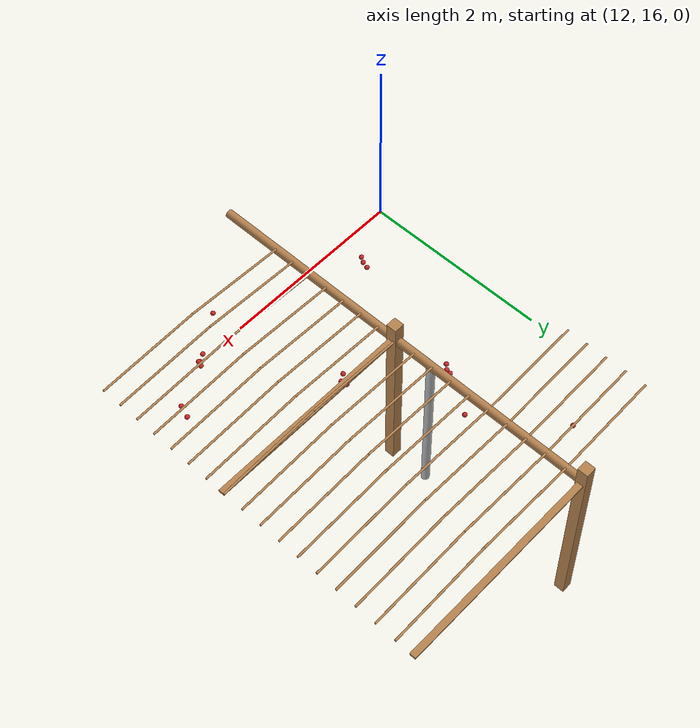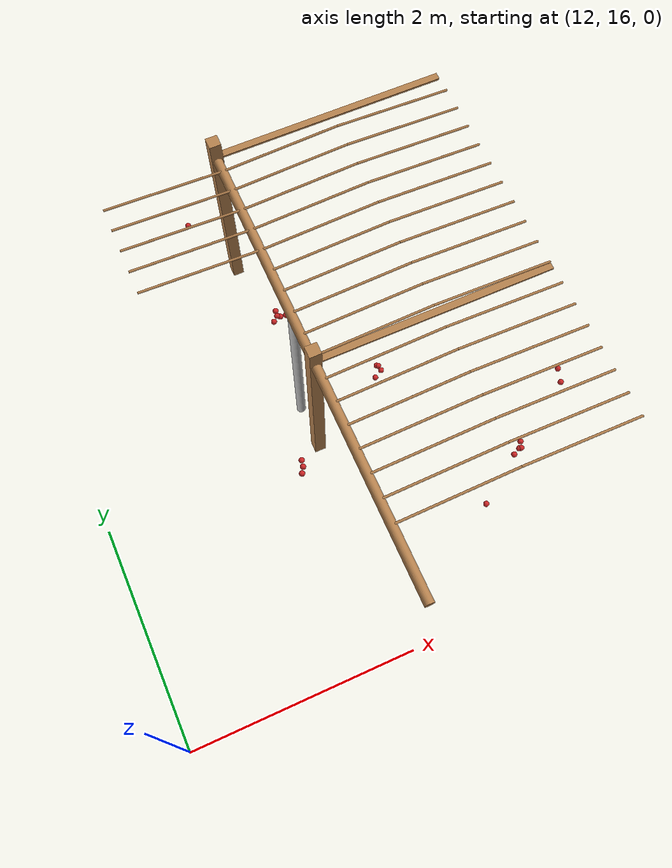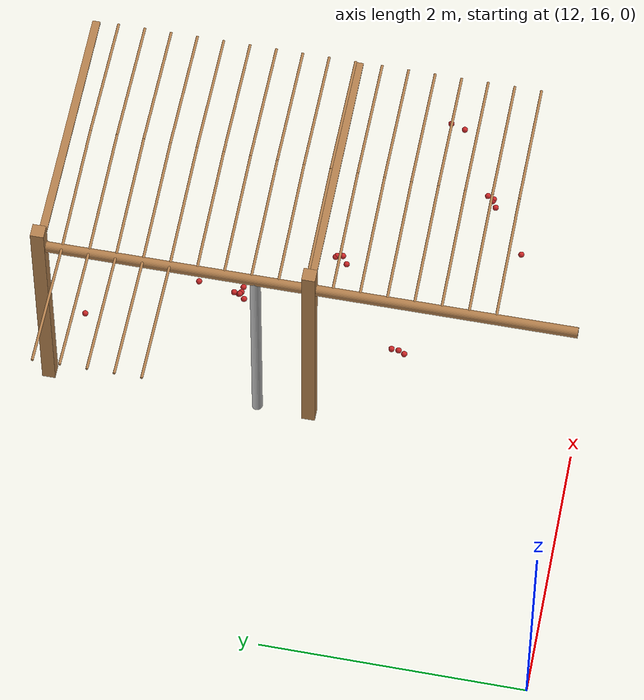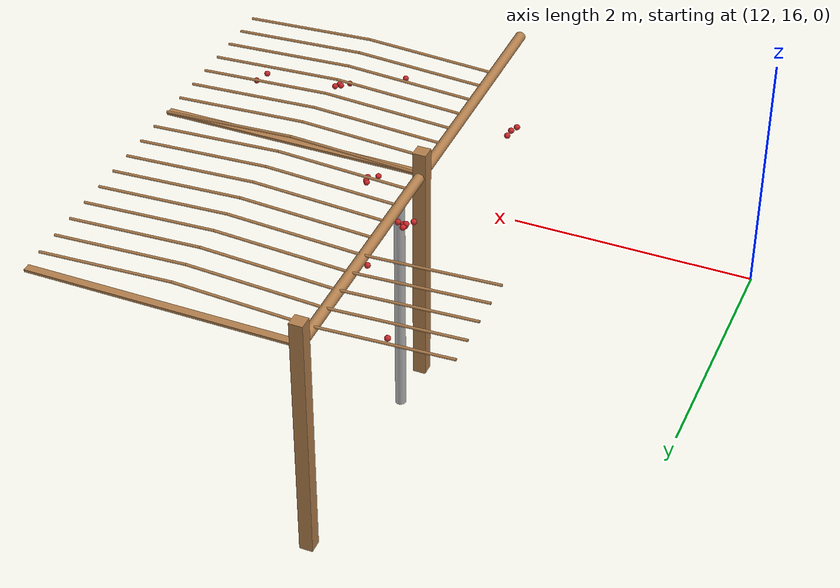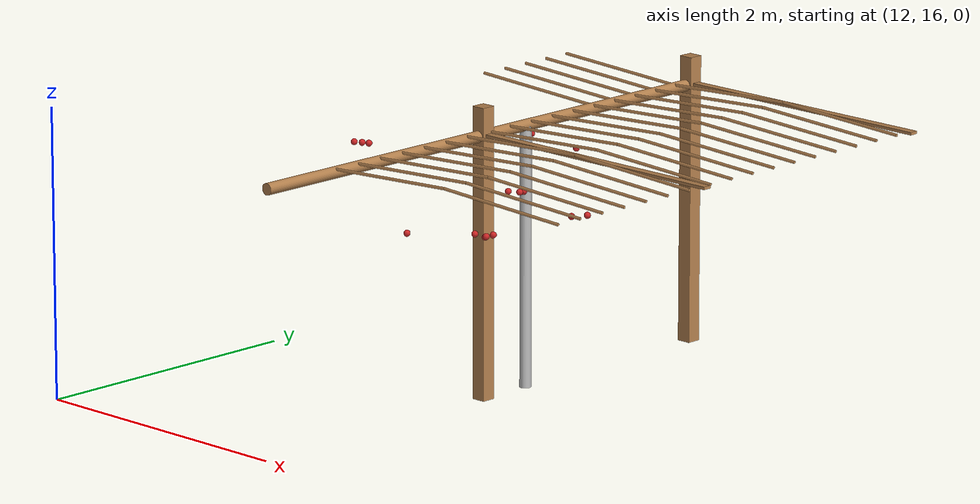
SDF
<sdf version="1.4">
 <model name="pergola">
  <include><name>post_86</name><pose>14.0 18.0 0 0 0 0</pose><uri>model://post</uri></include>
  <include><name>post_87</name><pose>14.0 20.0 0 0 0 0</pose><uri>model://post</uri></include>
  <link name="beam_86">
   <pose>15.0 18.0 1.81 0 0 0</pose>
   <collision name="collision"><geometry><box><size>2.0 0.06 0.02</size></box></geometry></collision>
   <visual name="visual">
    <geometry><box><size>2.0 0.06 0.02</size></box></geometry>
    <material><script><name>Gazebo/Wood</name></script></material>
   </visual>
   <inertial>
    <mass>5</mass>
    <inertia>
     <ixx>0.0016666666666666668</ixx>
     <ixy>0.0</ixy>
     <ixz>0.0</ixz>
     <iyy>1.6681666666666664</iyy>
     <iyz>0.0</iyz>
     <izz>1.6668333333333332</izz>
    </inertia>
   </inertial>
  </link>
  <link name="beam_87">
   <pose>15.0 20.0 1.81 0 0 0</pose>
   <collision name="collision"><geometry><box><size>2.0 0.06 0.02</size></box></geometry></collision>
   <visual name="visual">
    <geometry><box><size>2.0 0.06 0.02</size></box></geometry>
    <material><script><name>Gazebo/Wood</name></script></material>
   </visual>
   <inertial>
    <mass>5</mass>
    <inertia>
     <ixx>0.0016666666666666668</ixx>
     <ixy>0.0</ixy>
     <ixz>0.0</ixz>
     <iyy>1.6681666666666664</iyy>
     <iyz>0.0</iyz>
     <izz>1.6668333333333332</izz>
    </inertia>
   </inertial>
  </link>
  <include><name>tree_79</name><pose>14.0 18.4 0 0 0 0</pose><uri>model://tree_trunk</uri></include>
  <link name="baseBranch_78">
   <pose>14.0 17.0 1.8 1.5707963267948966 0 0</pose>
   <collision name="collision">
    <geometry><cylinder><radius>0.04</radius><length>1.94</length></cylinder></geometry>
   </collision>
   <visual name="visual">
    <geometry><cylinder><radius>0.04</radius><length>1.94</length></cylinder></geometry>
    <material><script><name>Gazebo/WoodFloor</name></script></material>
   </visual>
   <inertial>
    <mass>10</mass>
    <inertia>
     <ixx>3.140333333333333</ixx>
     <ixy>0.0</ixy>
     <ixz>0.0</ixz>
     <iyy>3.140333333333333</iyy>
     <iyz>0.0</iyz>
     <izz>0.008</izz>
    </inertia>
   </inertial>
  </link>
  <link name="baseBranch_79">
   <pose>14.0 19.0 1.8 1.5707963267948966 0 0</pose>
   <collision name="collision">
    <geometry><cylinder><radius>0.04</radius><length>1.94</length></cylinder></geometry>
   </collision>
   <visual name="visual">
    <geometry><cylinder><radius>0.04</radius><length>1.94</length></cylinder></geometry>
    <material><script><name>Gazebo/WoodFloor</name></script></material>
   </visual>
   <inertial>
    <mass>10</mass>
    <inertia>
     <ixx>3.140333333333333</ixx>
     <ixy>0.0</ixy>
     <ixz>0.0</ixz>
     <iyy>3.140333333333333</iyy>
     <iyz>0.0</iyz>
     <izz>0.008</izz>
    </inertia>
   </inertial>
  </link>
  <link name="vine_1391">
   <pose>13.5 19.03 1.85 0 -1.5208379310729538 0</pose>
   <collision name="collision">
    <geometry><cylinder><radius>0.01</radius><length>1.0012492197250393</length></cylinder></geometry>
   </collision>
   <visual name="visual">
    <geometry><cylinder><radius>0.01</radius><length>1.0012492197250393</length></cylinder></geometry>
    <material><script><name>Gazebo/WoodFloor</name></script></material>
   </visual>
   <inertial>
    <mass>5</mass>
    <inertia>
     <ixx>0.41783333333333345</ixx>
     <ixy>0.0</ixy>
     <ixz>0.0</ixz>
     <iyy>0.41783333333333345</iyy>
     <iyz>0.0</iyz>
     <izz>0.00025</izz>
    </inertia>
   </inertial>
  </link>
  <link name="vine_1393">
   <pose>13.5 19.230000000000004 1.85 0 -1.5208379310729538 0</pose>
   <collision name="collision">
    <geometry><cylinder><radius>0.01</radius><length>1.0012492197250393</length></cylinder></geometry>
   </collision>
   <visual name="visual">
    <geometry><cylinder><radius>0.01</radius><length>1.0012492197250393</length></cylinder></geometry>
    <material><script><name>Gazebo/WoodFloor</name></script></material>
   </visual>
   <inertial>
    <mass>5</mass>
    <inertia>
     <ixx>0.41783333333333345</ixx>
     <ixy>0.0</ixy>
     <ixz>0.0</ixz>
     <iyy>0.41783333333333345</iyy>
     <iyz>0.0</iyz>
     <izz>0.00025</izz>
    </inertia>
   </inertial>
  </link>
  <link name="vine_1395">
   <pose>13.5 19.430000000000003 1.85 0 -1.5208379310729538 0</pose>
   <collision name="collision">
    <geometry><cylinder><radius>0.01</radius><length>1.0012492197250393</length></cylinder></geometry>
   </collision>
   <visual name="visual">
    <geometry><cylinder><radius>0.01</radius><length>1.0012492197250393</length></cylinder></geometry>
    <material><script><name>Gazebo/WoodFloor</name></script></material>
   </visual>
   <inertial>
    <mass>5</mass>
    <inertia>
     <ixx>0.41783333333333345</ixx>
     <ixy>0.0</ixy>
     <ixz>0.0</ixz>
     <iyy>0.41783333333333345</iyy>
     <iyz>0.0</iyz>
     <izz>0.00025</izz>
    </inertia>
   </inertial>
  </link>
  <link name="vine_1397">
   <pose>13.5 19.630000000000003 1.85 0 -1.5208379310729538 0</pose>
   <collision name="collision">
    <geometry><cylinder><radius>0.01</radius><length>1.0012492197250393</length></cylinder></geometry>
   </collision>
   <visual name="visual">
    <geometry><cylinder><radius>0.01</radius><length>1.0012492197250393</length></cylinder></geometry>
    <material><script><name>Gazebo/WoodFloor</name></script></material>
   </visual>
   <inertial>
    <mass>5</mass>
    <inertia>
     <ixx>0.41783333333333345</ixx>
     <ixy>0.0</ixy>
     <ixz>0.0</ixz>
     <iyy>0.41783333333333345</iyy>
     <iyz>0.0</iyz>
     <izz>0.00025</izz>
    </inertia>
   </inertial>
  </link>
  <link name="vine_1399">
   <pose>13.5 19.830000000000002 1.85 0 -1.5208379310729538 0</pose>
   <collision name="collision">
    <geometry><cylinder><radius>0.01</radius><length>1.0012492197250393</length></cylinder></geometry>
   </collision>
   <visual name="visual">
    <geometry><cylinder><radius>0.01</radius><length>1.0012492197250393</length></cylinder></geometry>
    <material><script><name>Gazebo/WoodFloor</name></script></material>
   </visual>
   <inertial>
    <mass>5</mass>
    <inertia>
     <ixx>0.41783333333333345</ixx>
     <ixy>0.0</ixy>
     <ixz>0.0</ixz>
     <iyy>0.41783333333333345</iyy>
     <iyz>0.0</iyz>
     <izz>0.00025</izz>
    </inertia>
   </inertial>
  </link>
  <link name="vine_1566">
   <pose>14.5 16.630000000000003 1.85 0 1.5208379310729538 0</pose>
   <collision name="collision">
    <geometry><cylinder><radius>0.01</radius><length>1.0012492197250393</length></cylinder></geometry>
   </collision>
   <visual name="visual">
    <geometry><cylinder><radius>0.01</radius><length>1.0012492197250393</length></cylinder></geometry>
    <material><script><name>Gazebo/WoodFloor</name></script></material>
   </visual>
   <inertial>
    <mass>5</mass>
    <inertia>
     <ixx>0.41783333333333345</ixx>
     <ixy>0.0</ixy>
     <ixz>0.0</ixz>
     <iyy>0.41783333333333345</iyy>
     <iyz>0.0</iyz>
     <izz>0.00025</izz>
    </inertia>
   </inertial>
  </link>
  <link name="vine_1567">
   <pose>15.5 16.630000000000003 1.85 0 -1.5208379310729538 0</pose>
   <collision name="collision">
    <geometry><cylinder><radius>0.01</radius><length>1.0012492197250393</length></cylinder></geometry>
   </collision>
   <visual name="visual">
    <geometry><cylinder><radius>0.01</radius><length>1.0012492197250393</length></cylinder></geometry>
    <material><script><name>Gazebo/WoodFloor</name></script></material>
   </visual>
   <inertial>
    <mass>5</mass>
    <inertia>
     <ixx>0.41783333333333345</ixx>
     <ixy>0.0</ixy>
     <ixz>0.0</ixz>
     <iyy>0.41783333333333345</iyy>
     <iyz>0.0</iyz>
     <izz>0.00025</izz>
    </inertia>
   </inertial>
  </link>
  <link name="vine_1568">
   <pose>14.5 16.830000000000002 1.85 0 1.5208379310729538 0</pose>
   <collision name="collision">
    <geometry><cylinder><radius>0.01</radius><length>1.0012492197250393</length></cylinder></geometry>
   </collision>
   <visual name="visual">
    <geometry><cylinder><radius>0.01</radius><length>1.0012492197250393</length></cylinder></geometry>
    <material><script><name>Gazebo/WoodFloor</name></script></material>
   </visual>
   <inertial>
    <mass>5</mass>
    <inertia>
     <ixx>0.41783333333333345</ixx>
     <ixy>0.0</ixy>
     <ixz>0.0</ixz>
     <iyy>0.41783333333333345</iyy>
     <iyz>0.0</iyz>
     <izz>0.00025</izz>
    </inertia>
   </inertial>
  </link>
  <link name="vine_1569">
   <pose>15.5 16.830000000000002 1.85 0 -1.5208379310729538 0</pose>
   <collision name="collision">
    <geometry><cylinder><radius>0.01</radius><length>1.0012492197250393</length></cylinder></geometry>
   </collision>
   <visual name="visual">
    <geometry><cylinder><radius>0.01</radius><length>1.0012492197250393</length></cylinder></geometry>
    <material><script><name>Gazebo/WoodFloor</name></script></material>
   </visual>
   <inertial>
    <mass>5</mass>
    <inertia>
     <ixx>0.41783333333333345</ixx>
     <ixy>0.0</ixy>
     <ixz>0.0</ixz>
     <iyy>0.41783333333333345</iyy>
     <iyz>0.0</iyz>
     <izz>0.00025</izz>
    </inertia>
   </inertial>
  </link>
  <link name="vine_1570">
   <pose>14.5 17.03 1.85 0 1.5208379310729538 0</pose>
   <collision name="collision">
    <geometry><cylinder><radius>0.01</radius><length>1.0012492197250393</length></cylinder></geometry>
   </collision>
   <visual name="visual">
    <geometry><cylinder><radius>0.01</radius><length>1.0012492197250393</length></cylinder></geometry>
    <material><script><name>Gazebo/WoodFloor</name></script></material>
   </visual>
   <inertial>
    <mass>5</mass>
    <inertia>
     <ixx>0.41783333333333345</ixx>
     <ixy>0.0</ixy>
     <ixz>0.0</ixz>
     <iyy>0.41783333333333345</iyy>
     <iyz>0.0</iyz>
     <izz>0.00025</izz>
    </inertia>
   </inertial>
  </link>
  <link name="vine_1571">
   <pose>15.5 17.03 1.85 0 -1.5208379310729538 0</pose>
   <collision name="collision">
    <geometry><cylinder><radius>0.01</radius><length>1.0012492197250393</length></cylinder></geometry>
   </collision>
   <visual name="visual">
    <geometry><cylinder><radius>0.01</radius><length>1.0012492197250393</length></cylinder></geometry>
    <material><script><name>Gazebo/WoodFloor</name></script></material>
   </visual>
   <inertial>
    <mass>5</mass>
    <inertia>
     <ixx>0.41783333333333345</ixx>
     <ixy>0.0</ixy>
     <ixz>0.0</ixz>
     <iyy>0.41783333333333345</iyy>
     <iyz>0.0</iyz>
     <izz>0.00025</izz>
    </inertia>
   </inertial>
  </link>
  <link name="vine_1572">
   <pose>14.5 17.23 1.85 0 1.5208379310729538 0</pose>
   <collision name="collision">
    <geometry><cylinder><radius>0.01</radius><length>1.0012492197250393</length></cylinder></geometry>
   </collision>
   <visual name="visual">
    <geometry><cylinder><radius>0.01</radius><length>1.0012492197250393</length></cylinder></geometry>
    <material><script><name>Gazebo/WoodFloor</name></script></material>
   </visual>
   <inertial>
    <mass>5</mass>
    <inertia>
     <ixx>0.41783333333333345</ixx>
     <ixy>0.0</ixy>
     <ixz>0.0</ixz>
     <iyy>0.41783333333333345</iyy>
     <iyz>0.0</iyz>
     <izz>0.00025</izz>
    </inertia>
   </inertial>
  </link>
  <link name="vine_1573">
   <pose>15.5 17.23 1.85 0 -1.5208379310729538 0</pose>
   <collision name="collision">
    <geometry><cylinder><radius>0.01</radius><length>1.0012492197250393</length></cylinder></geometry>
   </collision>
   <visual name="visual">
    <geometry><cylinder><radius>0.01</radius><length>1.0012492197250393</length></cylinder></geometry>
    <material><script><name>Gazebo/WoodFloor</name></script></material>
   </visual>
   <inertial>
    <mass>5</mass>
    <inertia>
     <ixx>0.41783333333333345</ixx>
     <ixy>0.0</ixy>
     <ixz>0.0</ixz>
     <iyy>0.41783333333333345</iyy>
     <iyz>0.0</iyz>
     <izz>0.00025</izz>
    </inertia>
   </inertial>
  </link>
  <link name="vine_1574">
   <pose>14.5 17.430000000000003 1.85 0 1.5208379310729538 0</pose>
   <collision name="collision">
    <geometry><cylinder><radius>0.01</radius><length>1.0012492197250393</length></cylinder></geometry>
   </collision>
   <visual name="visual">
    <geometry><cylinder><radius>0.01</radius><length>1.0012492197250393</length></cylinder></geometry>
    <material><script><name>Gazebo/WoodFloor</name></script></material>
   </visual>
   <inertial>
    <mass>5</mass>
    <inertia>
     <ixx>0.41783333333333345</ixx>
     <ixy>0.0</ixy>
     <ixz>0.0</ixz>
     <iyy>0.41783333333333345</iyy>
     <iyz>0.0</iyz>
     <izz>0.00025</izz>
    </inertia>
   </inertial>
  </link>
  <link name="vine_1575">
   <pose>15.5 17.430000000000003 1.85 0 -1.5208379310729538 0</pose>
   <collision name="collision">
    <geometry><cylinder><radius>0.01</radius><length>1.0012492197250393</length></cylinder></geometry>
   </collision>
   <visual name="visual">
    <geometry><cylinder><radius>0.01</radius><length>1.0012492197250393</length></cylinder></geometry>
    <material><script><name>Gazebo/WoodFloor</name></script></material>
   </visual>
   <inertial>
    <mass>5</mass>
    <inertia>
     <ixx>0.41783333333333345</ixx>
     <ixy>0.0</ixy>
     <ixz>0.0</ixz>
     <iyy>0.41783333333333345</iyy>
     <iyz>0.0</iyz>
     <izz>0.00025</izz>
    </inertia>
   </inertial>
  </link>
  <link name="vine_1576">
   <pose>14.5 17.630000000000003 1.85 0 1.5208379310729538 0</pose>
   <collision name="collision">
    <geometry><cylinder><radius>0.01</radius><length>1.0012492197250393</length></cylinder></geometry>
   </collision>
   <visual name="visual">
    <geometry><cylinder><radius>0.01</radius><length>1.0012492197250393</length></cylinder></geometry>
    <material><script><name>Gazebo/WoodFloor</name></script></material>
   </visual>
   <inertial>
    <mass>5</mass>
    <inertia>
     <ixx>0.41783333333333345</ixx>
     <ixy>0.0</ixy>
     <ixz>0.0</ixz>
     <iyy>0.41783333333333345</iyy>
     <iyz>0.0</iyz>
     <izz>0.00025</izz>
    </inertia>
   </inertial>
  </link>
  <link name="vine_1577">
   <pose>15.5 17.630000000000003 1.85 0 -1.5208379310729538 0</pose>
   <collision name="collision">
    <geometry><cylinder><radius>0.01</radius><length>1.0012492197250393</length></cylinder></geometry>
   </collision>
   <visual name="visual">
    <geometry><cylinder><radius>0.01</radius><length>1.0012492197250393</length></cylinder></geometry>
    <material><script><name>Gazebo/WoodFloor</name></script></material>
   </visual>
   <inertial>
    <mass>5</mass>
    <inertia>
     <ixx>0.41783333333333345</ixx>
     <ixy>0.0</ixy>
     <ixz>0.0</ixz>
     <iyy>0.41783333333333345</iyy>
     <iyz>0.0</iyz>
     <izz>0.00025</izz>
    </inertia>
   </inertial>
  </link>
  <link name="vine_1578">
   <pose>14.5 17.830000000000002 1.85 0 1.5208379310729538 0</pose>
   <collision name="collision">
    <geometry><cylinder><radius>0.01</radius><length>1.0012492197250393</length></cylinder></geometry>
   </collision>
   <visual name="visual">
    <geometry><cylinder><radius>0.01</radius><length>1.0012492197250393</length></cylinder></geometry>
    <material><script><name>Gazebo/WoodFloor</name></script></material>
   </visual>
   <inertial>
    <mass>5</mass>
    <inertia>
     <ixx>0.41783333333333345</ixx>
     <ixy>0.0</ixy>
     <ixz>0.0</ixz>
     <iyy>0.41783333333333345</iyy>
     <iyz>0.0</iyz>
     <izz>0.00025</izz>
    </inertia>
   </inertial>
  </link>
  <link name="vine_1579">
   <pose>15.5 17.830000000000002 1.85 0 -1.5208379310729538 0</pose>
   <collision name="collision">
    <geometry><cylinder><radius>0.01</radius><length>1.0012492197250393</length></cylinder></geometry>
   </collision>
   <visual name="visual">
    <geometry><cylinder><radius>0.01</radius><length>1.0012492197250393</length></cylinder></geometry>
    <material><script><name>Gazebo/WoodFloor</name></script></material>
   </visual>
   <inertial>
    <mass>5</mass>
    <inertia>
     <ixx>0.41783333333333345</ixx>
     <ixy>0.0</ixy>
     <ixz>0.0</ixz>
     <iyy>0.41783333333333345</iyy>
     <iyz>0.0</iyz>
     <izz>0.00025</izz>
    </inertia>
   </inertial>
  </link>
  <link name="vine_1580">
   <pose>14.5 18.03 1.85 0 1.5208379310729538 0</pose>
   <collision name="collision">
    <geometry><cylinder><radius>0.01</radius><length>1.0012492197250393</length></cylinder></geometry>
   </collision>
   <visual name="visual">
    <geometry><cylinder><radius>0.01</radius><length>1.0012492197250393</length></cylinder></geometry>
    <material><script><name>Gazebo/WoodFloor</name></script></material>
   </visual>
   <inertial>
    <mass>5</mass>
    <inertia>
     <ixx>0.41783333333333345</ixx>
     <ixy>0.0</ixy>
     <ixz>0.0</ixz>
     <iyy>0.41783333333333345</iyy>
     <iyz>0.0</iyz>
     <izz>0.00025</izz>
    </inertia>
   </inertial>
  </link>
  <link name="vine_1581">
   <pose>15.5 18.03 1.85 0 -1.5208379310729538 0</pose>
   <collision name="collision">
    <geometry><cylinder><radius>0.01</radius><length>1.0012492197250393</length></cylinder></geometry>
   </collision>
   <visual name="visual">
    <geometry><cylinder><radius>0.01</radius><length>1.0012492197250393</length></cylinder></geometry>
    <material><script><name>Gazebo/WoodFloor</name></script></material>
   </visual>
   <inertial>
    <mass>5</mass>
    <inertia>
     <ixx>0.41783333333333345</ixx>
     <ixy>0.0</ixy>
     <ixz>0.0</ixz>
     <iyy>0.41783333333333345</iyy>
     <iyz>0.0</iyz>
     <izz>0.00025</izz>
    </inertia>
   </inertial>
  </link>
  <link name="vine_1582">
   <pose>14.5 18.23 1.85 0 1.5208379310729538 0</pose>
   <collision name="collision">
    <geometry><cylinder><radius>0.01</radius><length>1.0012492197250393</length></cylinder></geometry>
   </collision>
   <visual name="visual">
    <geometry><cylinder><radius>0.01</radius><length>1.0012492197250393</length></cylinder></geometry>
    <material><script><name>Gazebo/WoodFloor</name></script></material>
   </visual>
   <inertial>
    <mass>5</mass>
    <inertia>
     <ixx>0.41783333333333345</ixx>
     <ixy>0.0</ixy>
     <ixz>0.0</ixz>
     <iyy>0.41783333333333345</iyy>
     <iyz>0.0</iyz>
     <izz>0.00025</izz>
    </inertia>
   </inertial>
  </link>
  <link name="vine_1583">
   <pose>15.5 18.23 1.85 0 -1.5208379310729538 0</pose>
   <collision name="collision">
    <geometry><cylinder><radius>0.01</radius><length>1.0012492197250393</length></cylinder></geometry>
   </collision>
   <visual name="visual">
    <geometry><cylinder><radius>0.01</radius><length>1.0012492197250393</length></cylinder></geometry>
    <material><script><name>Gazebo/WoodFloor</name></script></material>
   </visual>
   <inertial>
    <mass>5</mass>
    <inertia>
     <ixx>0.41783333333333345</ixx>
     <ixy>0.0</ixy>
     <ixz>0.0</ixz>
     <iyy>0.41783333333333345</iyy>
     <iyz>0.0</iyz>
     <izz>0.00025</izz>
    </inertia>
   </inertial>
  </link>
  <link name="vine_1584">
   <pose>14.5 18.430000000000003 1.85 0 1.5208379310729538 0</pose>
   <collision name="collision">
    <geometry><cylinder><radius>0.01</radius><length>1.0012492197250393</length></cylinder></geometry>
   </collision>
   <visual name="visual">
    <geometry><cylinder><radius>0.01</radius><length>1.0012492197250393</length></cylinder></geometry>
    <material><script><name>Gazebo/WoodFloor</name></script></material>
   </visual>
   <inertial>
    <mass>5</mass>
    <inertia>
     <ixx>0.41783333333333345</ixx>
     <ixy>0.0</ixy>
     <ixz>0.0</ixz>
     <iyy>0.41783333333333345</iyy>
     <iyz>0.0</iyz>
     <izz>0.00025</izz>
    </inertia>
   </inertial>
  </link>
  <link name="vine_1585">
   <pose>15.5 18.430000000000003 1.85 0 -1.5208379310729538 0</pose>
   <collision name="collision">
    <geometry><cylinder><radius>0.01</radius><length>1.0012492197250393</length></cylinder></geometry>
   </collision>
   <visual name="visual">
    <geometry><cylinder><radius>0.01</radius><length>1.0012492197250393</length></cylinder></geometry>
    <material><script><name>Gazebo/WoodFloor</name></script></material>
   </visual>
   <inertial>
    <mass>5</mass>
    <inertia>
     <ixx>0.41783333333333345</ixx>
     <ixy>0.0</ixy>
     <ixz>0.0</ixz>
     <iyy>0.41783333333333345</iyy>
     <iyz>0.0</iyz>
     <izz>0.00025</izz>
    </inertia>
   </inertial>
  </link>
  <link name="vine_1586">
   <pose>14.5 18.630000000000003 1.85 0 1.5208379310729538 0</pose>
   <collision name="collision">
    <geometry><cylinder><radius>0.01</radius><length>1.0012492197250393</length></cylinder></geometry>
   </collision>
   <visual name="visual">
    <geometry><cylinder><radius>0.01</radius><length>1.0012492197250393</length></cylinder></geometry>
    <material><script><name>Gazebo/WoodFloor</name></script></material>
   </visual>
   <inertial>
    <mass>5</mass>
    <inertia>
     <ixx>0.41783333333333345</ixx>
     <ixy>0.0</ixy>
     <ixz>0.0</ixz>
     <iyy>0.41783333333333345</iyy>
     <iyz>0.0</iyz>
     <izz>0.00025</izz>
    </inertia>
   </inertial>
  </link>
  <link name="vine_1587">
   <pose>15.5 18.630000000000003 1.85 0 -1.5208379310729538 0</pose>
   <collision name="collision">
    <geometry><cylinder><radius>0.01</radius><length>1.0012492197250393</length></cylinder></geometry>
   </collision>
   <visual name="visual">
    <geometry><cylinder><radius>0.01</radius><length>1.0012492197250393</length></cylinder></geometry>
    <material><script><name>Gazebo/WoodFloor</name></script></material>
   </visual>
   <inertial>
    <mass>5</mass>
    <inertia>
     <ixx>0.41783333333333345</ixx>
     <ixy>0.0</ixy>
     <ixz>0.0</ixz>
     <iyy>0.41783333333333345</iyy>
     <iyz>0.0</iyz>
     <izz>0.00025</izz>
    </inertia>
   </inertial>
  </link>
  <link name="vine_1588">
   <pose>14.5 18.830000000000002 1.85 0 1.5208379310729538 0</pose>
   <collision name="collision">
    <geometry><cylinder><radius>0.01</radius><length>1.0012492197250393</length></cylinder></geometry>
   </collision>
   <visual name="visual">
    <geometry><cylinder><radius>0.01</radius><length>1.0012492197250393</length></cylinder></geometry>
    <material><script><name>Gazebo/WoodFloor</name></script></material>
   </visual>
   <inertial>
    <mass>5</mass>
    <inertia>
     <ixx>0.41783333333333345</ixx>
     <ixy>0.0</ixy>
     <ixz>0.0</ixz>
     <iyy>0.41783333333333345</iyy>
     <iyz>0.0</iyz>
     <izz>0.00025</izz>
    </inertia>
   </inertial>
  </link>
  <link name="vine_1589">
   <pose>15.5 18.830000000000002 1.85 0 -1.5208379310729538 0</pose>
   <collision name="collision">
    <geometry><cylinder><radius>0.01</radius><length>1.0012492197250393</length></cylinder></geometry>
   </collision>
   <visual name="visual">
    <geometry><cylinder><radius>0.01</radius><length>1.0012492197250393</length></cylinder></geometry>
    <material><script><name>Gazebo/WoodFloor</name></script></material>
   </visual>
   <inertial>
    <mass>5</mass>
    <inertia>
     <ixx>0.41783333333333345</ixx>
     <ixy>0.0</ixy>
     <ixz>0.0</ixz>
     <iyy>0.41783333333333345</iyy>
     <iyz>0.0</iyz>
     <izz>0.00025</izz>
    </inertia>
   </inertial>
  </link>
  <link name="vine_1590">
   <pose>14.5 19.03 1.85 0 1.5208379310729538 0</pose>
   <collision name="collision">
    <geometry><cylinder><radius>0.01</radius><length>1.0012492197250393</length></cylinder></geometry>
   </collision>
   <visual name="visual">
    <geometry><cylinder><radius>0.01</radius><length>1.0012492197250393</length></cylinder></geometry>
    <material><script><name>Gazebo/WoodFloor</name></script></material>
   </visual>
   <inertial>
    <mass>5</mass>
    <inertia>
     <ixx>0.41783333333333345</ixx>
     <ixy>0.0</ixy>
     <ixz>0.0</ixz>
     <iyy>0.41783333333333345</iyy>
     <iyz>0.0</iyz>
     <izz>0.00025</izz>
    </inertia>
   </inertial>
  </link>
  <link name="vine_1591">
   <pose>15.5 19.03 1.85 0 -1.5208379310729538 0</pose>
   <collision name="collision">
    <geometry><cylinder><radius>0.01</radius><length>1.0012492197250393</length></cylinder></geometry>
   </collision>
   <visual name="visual">
    <geometry><cylinder><radius>0.01</radius><length>1.0012492197250393</length></cylinder></geometry>
    <material><script><name>Gazebo/WoodFloor</name></script></material>
   </visual>
   <inertial>
    <mass>5</mass>
    <inertia>
     <ixx>0.41783333333333345</ixx>
     <ixy>0.0</ixy>
     <ixz>0.0</ixz>
     <iyy>0.41783333333333345</iyy>
     <iyz>0.0</iyz>
     <izz>0.00025</izz>
    </inertia>
   </inertial>
  </link>
  <link name="vine_1592">
   <pose>14.5 19.230000000000004 1.85 0 1.5208379310729538 0</pose>
   <collision name="collision">
    <geometry><cylinder><radius>0.01</radius><length>1.0012492197250393</length></cylinder></geometry>
   </collision>
   <visual name="visual">
    <geometry><cylinder><radius>0.01</radius><length>1.0012492197250393</length></cylinder></geometry>
    <material><script><name>Gazebo/WoodFloor</name></script></material>
   </visual>
   <inertial>
    <mass>5</mass>
    <inertia>
     <ixx>0.41783333333333345</ixx>
     <ixy>0.0</ixy>
     <ixz>0.0</ixz>
     <iyy>0.41783333333333345</iyy>
     <iyz>0.0</iyz>
     <izz>0.00025</izz>
    </inertia>
   </inertial>
  </link>
  <link name="vine_1593">
   <pose>15.5 19.230000000000004 1.85 0 -1.5208379310729538 0</pose>
   <collision name="collision">
    <geometry><cylinder><radius>0.01</radius><length>1.0012492197250393</length></cylinder></geometry>
   </collision>
   <visual name="visual">
    <geometry><cylinder><radius>0.01</radius><length>1.0012492197250393</length></cylinder></geometry>
    <material><script><name>Gazebo/WoodFloor</name></script></material>
   </visual>
   <inertial>
    <mass>5</mass>
    <inertia>
     <ixx>0.41783333333333345</ixx>
     <ixy>0.0</ixy>
     <ixz>0.0</ixz>
     <iyy>0.41783333333333345</iyy>
     <iyz>0.0</iyz>
     <izz>0.00025</izz>
    </inertia>
   </inertial>
  </link>
  <link name="vine_1594">
   <pose>14.5 19.430000000000003 1.85 0 1.5208379310729538 0</pose>
   <collision name="collision">
    <geometry><cylinder><radius>0.01</radius><length>1.0012492197250393</length></cylinder></geometry>
   </collision>
   <visual name="visual">
    <geometry><cylinder><radius>0.01</radius><length>1.0012492197250393</length></cylinder></geometry>
    <material><script><name>Gazebo/WoodFloor</name></script></material>
   </visual>
   <inertial>
    <mass>5</mass>
    <inertia>
     <ixx>0.41783333333333345</ixx>
     <ixy>0.0</ixy>
     <ixz>0.0</ixz>
     <iyy>0.41783333333333345</iyy>
     <iyz>0.0</iyz>
     <izz>0.00025</izz>
    </inertia>
   </inertial>
  </link>
  <link name="vine_1595">
   <pose>15.5 19.430000000000003 1.85 0 -1.5208379310729538 0</pose>
   <collision name="collision">
    <geometry><cylinder><radius>0.01</radius><length>1.0012492197250393</length></cylinder></geometry>
   </collision>
   <visual name="visual">
    <geometry><cylinder><radius>0.01</radius><length>1.0012492197250393</length></cylinder></geometry>
    <material><script><name>Gazebo/WoodFloor</name></script></material>
   </visual>
   <inertial>
    <mass>5</mass>
    <inertia>
     <ixx>0.41783333333333345</ixx>
     <ixy>0.0</ixy>
     <ixz>0.0</ixz>
     <iyy>0.41783333333333345</iyy>
     <iyz>0.0</iyz>
     <izz>0.00025</izz>
    </inertia>
   </inertial>
  </link>
  <link name="vine_1596">
   <pose>14.5 19.630000000000003 1.85 0 1.5208379310729538 0</pose>
   <collision name="collision">
    <geometry><cylinder><radius>0.01</radius><length>1.0012492197250393</length></cylinder></geometry>
   </collision>
   <visual name="visual">
    <geometry><cylinder><radius>0.01</radius><length>1.0012492197250393</length></cylinder></geometry>
    <material><script><name>Gazebo/WoodFloor</name></script></material>
   </visual>
   <inertial>
    <mass>5</mass>
    <inertia>
     <ixx>0.41783333333333345</ixx>
     <ixy>0.0</ixy>
     <ixz>0.0</ixz>
     <iyy>0.41783333333333345</iyy>
     <iyz>0.0</iyz>
     <izz>0.00025</izz>
    </inertia>
   </inertial>
  </link>
  <link name="vine_1597">
   <pose>15.5 19.630000000000003 1.85 0 -1.5208379310729538 0</pose>
   <collision name="collision">
    <geometry><cylinder><radius>0.01</radius><length>1.0012492197250393</length></cylinder></geometry>
   </collision>
   <visual name="visual">
    <geometry><cylinder><radius>0.01</radius><length>1.0012492197250393</length></cylinder></geometry>
    <material><script><name>Gazebo/WoodFloor</name></script></material>
   </visual>
   <inertial>
    <mass>5</mass>
    <inertia>
     <ixx>0.41783333333333345</ixx>
     <ixy>0.0</ixy>
     <ixz>0.0</ixz>
     <iyy>0.41783333333333345</iyy>
     <iyz>0.0</iyz>
     <izz>0.00025</izz>
    </inertia>
   </inertial>
  </link>
  <link name="vine_1598">
   <pose>14.5 19.830000000000002 1.85 0 1.5208379310729538 0</pose>
   <collision name="collision">
    <geometry><cylinder><radius>0.01</radius><length>1.0012492197250393</length></cylinder></geometry>
   </collision>
   <visual name="visual">
    <geometry><cylinder><radius>0.01</radius><length>1.0012492197250393</length></cylinder></geometry>
    <material><script><name>Gazebo/WoodFloor</name></script></material>
   </visual>
   <inertial>
    <mass>5</mass>
    <inertia>
     <ixx>0.41783333333333345</ixx>
     <ixy>0.0</ixy>
     <ixz>0.0</ixz>
     <iyy>0.41783333333333345</iyy>
     <iyz>0.0</iyz>
     <izz>0.00025</izz>
    </inertia>
   </inertial>
  </link>
  <link name="vine_1599">
   <pose>15.5 19.830000000000002 1.85 0 -1.5208379310729538 0</pose>
   <collision name="collision">
    <geometry><cylinder><radius>0.01</radius><length>1.0012492197250393</length></cylinder></geometry>
   </collision>
   <visual name="visual">
    <geometry><cylinder><radius>0.01</radius><length>1.0012492197250393</length></cylinder></geometry>
    <material><script><name>Gazebo/WoodFloor</name></script></material>
   </visual>
   <inertial>
    <mass>5</mass>
    <inertia>
     <ixx>0.41783333333333345</ixx>
     <ixy>0.0</ixy>
     <ixz>0.0</ixz>
     <iyy>0.41783333333333345</iyy>
     <iyz>0.0</iyz>
     <izz>0.00025</izz>
    </inertia>
   </inertial>
  </link>
  <link name="fruit_33">
   <pose>15.093010651774016 16.81053391173445 1.5615861155617845 0 0 0</pose>
   <collision name="fruit_collision_33"><geometry><sphere><radius>0.022</radius></sphere></geometry></collision>
   <visual name="visual">
    <geometry><sphere><radius>0.022</radius></sphere></geometry>
    <material><script><name>Gazebo/Red</name></script></material>
   </visual>
   <inertial>
    <mass>0.05</mass>
    <inertia>
     <ixx>9.679999999999999e-06</ixx>
     <ixy>0.0</ixy>
     <ixz>0.0</ixz>
     <iyy>9.679999999999999e-06</iyy>
     <iyz>0.0</iyz>
     <izz>9.679999999999999e-06</izz>
    </inertia>
   </inertial>
   <sensor name="fruit_contact_33" type="contact">
    <contact><collision>fruit_collision_33</collision></contact>
   </sensor>
  </link>
  <link name="fruit_116">
   <pose>14.421879193722823 17.802331739490423 1.5344445123138757 0 0 0</pose>
   <collision name="fruit_collision_116"><geometry><sphere><radius>0.022</radius></sphere></geometry></collision>
   <visual name="visual">
    <geometry><sphere><radius>0.022</radius></sphere></geometry>
    <material><script><name>Gazebo/Red</name></script></material>
   </visual>
   <inertial>
    <mass>0.05</mass>
    <inertia>
     <ixx>9.679999999999999e-06</ixx>
     <ixy>0.0</ixy>
     <ixz>0.0</ixz>
     <iyy>9.679999999999999e-06</iyy>
     <iyz>0.0</iyz>
     <izz>9.679999999999999e-06</izz>
    </inertia>
   </inertial>
   <sensor name="fruit_contact_116" type="contact">
    <contact><collision>fruit_collision_116</collision></contact>
   </sensor>
  </link>
  <link name="fruit_154">
   <pose>14.053107105474066 18.82866939262053 1.5733679437953876 0 0 0</pose>
   <collision name="fruit_collision_154"><geometry><sphere><radius>0.022</radius></sphere></geometry></collision>
   <visual name="visual">
    <geometry><sphere><radius>0.022</radius></sphere></geometry>
    <material><script><name>Gazebo/Red</name></script></material>
   </visual>
   <inertial>
    <mass>0.05</mass>
    <inertia>
     <ixx>9.679999999999999e-06</ixx>
     <ixy>0.0</ixy>
     <ixz>0.0</ixz>
     <iyy>9.679999999999999e-06</iyy>
     <iyz>0.0</iyz>
     <izz>9.679999999999999e-06</izz>
    </inertia>
   </inertial>
   <sensor name="fruit_contact_154" type="contact">
    <contact><collision>fruit_collision_154</collision></contact>
   </sensor>
  </link>
  <link name="fruit_184">
   <pose>15.628316738773668 17.1386578673021 1.7138771608233667 0 0 0</pose>
   <collision name="fruit_collision_184"><geometry><sphere><radius>0.022</radius></sphere></geometry></collision>
   <visual name="visual">
    <geometry><sphere><radius>0.022</radius></sphere></geometry>
    <material><script><name>Gazebo/Red</name></script></material>
   </visual>
   <inertial>
    <mass>0.05</mass>
    <inertia>
     <ixx>9.679999999999999e-06</ixx>
     <ixy>0.0</ixy>
     <ixz>0.0</ixz>
     <iyy>9.679999999999999e-06</iyy>
     <iyz>0.0</iyz>
     <izz>9.679999999999999e-06</izz>
    </inertia>
   </inertial>
   <sensor name="fruit_contact_184" type="contact">
    <contact><collision>fruit_collision_184</collision></contact>
   </sensor>
  </link>
  <link name="fruit_212">
   <pose>13.57762524368221 17.2261944841504 1.82290194741069 0 0 0</pose>
   <collision name="fruit_collision_212"><geometry><sphere><radius>0.022</radius></sphere></geometry></collision>
   <visual name="visual">
    <geometry><sphere><radius>0.022</radius></sphere></geometry>
    <material><script><name>Gazebo/Red</name></script></material>
   </visual>
   <inertial>
    <mass>0.05</mass>
    <inertia>
     <ixx>9.679999999999999e-06</ixx>
     <ixy>0.0</ixy>
     <ixz>0.0</ixz>
     <iyy>9.679999999999999e-06</iyy>
     <iyz>0.0</iyz>
     <izz>9.679999999999999e-06</izz>
    </inertia>
   </inertial>
   <sensor name="fruit_contact_212" type="contact">
    <contact><collision>fruit_collision_212</collision></contact>
   </sensor>
  </link>
  <link name="fruit_287">
   <pose>13.867748883138956 18.456398243459844 1.7390249127292663 0 0 0</pose>
   <collision name="fruit_collision_287"><geometry><sphere><radius>0.022</radius></sphere></geometry></collision>
   <visual name="visual">
    <geometry><sphere><radius>0.022</radius></sphere></geometry>
    <material><script><name>Gazebo/Red</name></script></material>
   </visual>
   <inertial>
    <mass>0.05</mass>
    <inertia>
     <ixx>9.679999999999999e-06</ixx>
     <ixy>0.0</ixy>
     <ixz>0.0</ixz>
     <iyy>9.679999999999999e-06</iyy>
     <iyz>0.0</iyz>
     <izz>9.679999999999999e-06</izz>
    </inertia>
   </inertial>
   <sensor name="fruit_contact_287" type="contact">
    <contact><collision>fruit_collision_287</collision></contact>
   </sensor>
  </link>
  <link name="fruit_368">
   <pose>15.184943930912441 16.883765054188903 1.558330113946757 0 0 0</pose>
   <collision name="fruit_collision_368"><geometry><sphere><radius>0.022</radius></sphere></geometry></collision>
   <visual name="visual">
    <geometry><sphere><radius>0.022</radius></sphere></geometry>
    <material><script><name>Gazebo/Red</name></script></material>
   </visual>
   <inertial>
    <mass>0.05</mass>
    <inertia>
     <ixx>9.679999999999999e-06</ixx>
     <ixy>0.0</ixy>
     <ixz>0.0</ixz>
     <iyy>9.679999999999999e-06</iyy>
     <iyz>0.0</iyz>
     <izz>9.679999999999999e-06</izz>
    </inertia>
   </inertial>
   <sensor name="fruit_contact_368" type="contact">
    <contact><collision>fruit_collision_368</collision></contact>
   </sensor>
  </link>
  <link name="fruit_417">
   <pose>13.90807662746369 18.49493284970026 1.735040350391454 0 0 0</pose>
   <collision name="fruit_collision_417"><geometry><sphere><radius>0.022</radius></sphere></geometry></collision>
   <visual name="visual">
    <geometry><sphere><radius>0.022</radius></sphere></geometry>
    <material><script><name>Gazebo/Red</name></script></material>
   </visual>
   <inertial>
    <mass>0.05</mass>
    <inertia>
     <ixx>9.679999999999999e-06</ixx>
     <ixy>0.0</ixy>
     <ixz>0.0</ixz>
     <iyy>9.679999999999999e-06</iyy>
     <iyz>0.0</iyz>
     <izz>9.679999999999999e-06</izz>
    </inertia>
   </inertial>
   <sensor name="fruit_contact_417" type="contact">
    <contact><collision>fruit_collision_417</collision></contact>
   </sensor>
  </link>
  <link name="fruit_438">
   <pose>13.615261634766474 17.325372093441462 1.8020507554892276 0 0 0</pose>
   <collision name="fruit_collision_438"><geometry><sphere><radius>0.022</radius></sphere></geometry></collision>
   <visual name="visual">
    <geometry><sphere><radius>0.022</radius></sphere></geometry>
    <material><script><name>Gazebo/Red</name></script></material>
   </visual>
   <inertial>
    <mass>0.05</mass>
    <inertia>
     <ixx>9.679999999999999e-06</ixx>
     <ixy>0.0</ixy>
     <ixz>0.0</ixz>
     <iyy>9.679999999999999e-06</iyy>
     <iyz>0.0</iyz>
     <izz>9.679999999999999e-06</izz>
    </inertia>
   </inertial>
   <sensor name="fruit_contact_438" type="contact">
    <contact><collision>fruit_collision_438</collision></contact>
   </sensor>
  </link>
  <link name="fruit_467">
   <pose>15.154644663398361 16.841741081655034 1.547039931670175 0 0 0</pose>
   <collision name="fruit_collision_467"><geometry><sphere><radius>0.022</radius></sphere></geometry></collision>
   <visual name="visual">
    <geometry><sphere><radius>0.022</radius></sphere></geometry>
    <material><script><name>Gazebo/Red</name></script></material>
   </visual>
   <inertial>
    <mass>0.05</mass>
    <inertia>
     <ixx>9.679999999999999e-06</ixx>
     <ixy>0.0</ixy>
     <ixz>0.0</ixz>
     <iyy>9.679999999999999e-06</iyy>
     <iyz>0.0</iyz>
     <izz>9.679999999999999e-06</izz>
    </inertia>
   </inertial>
   <sensor name="fruit_contact_467" type="contact">
    <contact><collision>fruit_collision_467</collision></contact>
   </sensor>
  </link>
  <link name="fruit_475">
   <pose>13.913945574472134 18.53780436882378 1.7344704166173837 0 0 0</pose>
   <collision name="fruit_collision_475"><geometry><sphere><radius>0.022</radius></sphere></geometry></collision>
   <visual name="visual">
    <geometry><sphere><radius>0.022</radius></sphere></geometry>
    <material><script><name>Gazebo/Red</name></script></material>
   </visual>
   <inertial>
    <mass>0.05</mass>
    <inertia>
     <ixx>9.679999999999999e-06</ixx>
     <ixy>0.0</ixy>
     <ixz>0.0</ixz>
     <iyy>9.679999999999999e-06</iyy>
     <iyz>0.0</iyz>
     <izz>9.679999999999999e-06</izz>
    </inertia>
   </inertial>
   <sensor name="fruit_contact_475" type="contact">
    <contact><collision>fruit_collision_475</collision></contact>
   </sensor>
  </link>
  <link name="fruit_488">
   <pose>13.975615320032638 18.481217465321865 1.723101070754805 0 0 0</pose>
   <collision name="fruit_collision_488"><geometry><sphere><radius>0.022</radius></sphere></geometry></collision>
   <visual name="visual">
    <geometry><sphere><radius>0.022</radius></sphere></geometry>
    <material><script><name>Gazebo/Red</name></script></material>
   </visual>
   <inertial>
    <mass>0.05</mass>
    <inertia>
     <ixx>9.679999999999999e-06</ixx>
     <ixy>0.0</ixy>
     <ixz>0.0</ixz>
     <iyy>9.679999999999999e-06</iyy>
     <iyz>0.0</iyz>
     <izz>9.679999999999999e-06</izz>
    </inertia>
   </inertial>
   <sensor name="fruit_contact_488" type="contact">
    <contact><collision>fruit_collision_488</collision></contact>
   </sensor>
  </link>
  <link name="fruit_538">
   <pose>13.605023301532327 17.272139136451077 1.814549493692224 0 0 0</pose>
   <collision name="fruit_collision_538"><geometry><sphere><radius>0.022</radius></sphere></geometry></collision>
   <visual name="visual">
    <geometry><sphere><radius>0.022</radius></sphere></geometry>
    <material><script><name>Gazebo/Red</name></script></material>
   </visual>
   <inertial>
    <mass>0.05</mass>
    <inertia>
     <ixx>9.679999999999999e-06</ixx>
     <ixy>0.0</ixy>
     <ixz>0.0</ixz>
     <iyy>9.679999999999999e-06</iyy>
     <iyz>0.0</iyz>
     <izz>9.679999999999999e-06</izz>
    </inertia>
   </inertial>
   <sensor name="fruit_contact_538" type="contact">
    <contact><collision>fruit_collision_538</collision></contact>
   </sensor>
  </link>
  <link name="fruit_568">
   <pose>13.91331909735729 18.502985033025674 1.7221183752570657 0 0 0</pose>
   <collision name="fruit_collision_568"><geometry><sphere><radius>0.022</radius></sphere></geometry></collision>
   <visual name="visual">
    <geometry><sphere><radius>0.022</radius></sphere></geometry>
    <material><script><name>Gazebo/Red</name></script></material>
   </visual>
   <inertial>
    <mass>0.05</mass>
    <inertia>
     <ixx>9.679999999999999e-06</ixx>
     <ixy>0.0</ixy>
     <ixz>0.0</ixz>
     <iyy>9.679999999999999e-06</iyy>
     <iyz>0.0</iyz>
     <izz>9.679999999999999e-06</izz>
    </inertia>
   </inertial>
   <sensor name="fruit_contact_568" type="contact">
    <contact><collision>fruit_collision_568</collision></contact>
   </sensor>
  </link>
  <link name="fruit_578">
   <pose>14.474305625631928 17.893366057580135 1.5266157617223002 0 0 0</pose>
   <collision name="fruit_collision_578"><geometry><sphere><radius>0.022</radius></sphere></geometry></collision>
   <visual name="visual">
    <geometry><sphere><radius>0.022</radius></sphere></geometry>
    <material><script><name>Gazebo/Red</name></script></material>
   </visual>
   <inertial>
    <mass>0.05</mass>
    <inertia>
     <ixx>9.679999999999999e-06</ixx>
     <ixy>0.0</ixy>
     <ixz>0.0</ixz>
     <iyy>9.679999999999999e-06</iyy>
     <iyz>0.0</iyz>
     <izz>9.679999999999999e-06</izz>
    </inertia>
   </inertial>
   <sensor name="fruit_contact_578" type="contact">
    <contact><collision>fruit_collision_578</collision></contact>
   </sensor>
  </link>
  <link name="fruit_584">
   <pose>13.579835893405516 19.573156174027805 1.6597960180341684 0 0 0</pose>
   <collision name="fruit_collision_584"><geometry><sphere><radius>0.022</radius></sphere></geometry></collision>
   <visual name="visual">
    <geometry><sphere><radius>0.022</radius></sphere></geometry>
    <material><script><name>Gazebo/Red</name></script></material>
   </visual>
   <inertial>
    <mass>0.05</mass>
    <inertia>
     <ixx>9.679999999999999e-06</ixx>
     <ixy>0.0</ixy>
     <ixz>0.0</ixz>
     <iyy>9.679999999999999e-06</iyy>
     <iyz>0.0</iyz>
     <izz>9.679999999999999e-06</izz>
    </inertia>
   </inertial>
   <sensor name="fruit_contact_584" type="contact">
    <contact><collision>fruit_collision_584</collision></contact>
   </sensor>
  </link>
  <link name="fruit_606">
   <pose>15.664787634724712 17.245725578767292 1.7082185192317947 0 0 0</pose>
   <collision name="fruit_collision_606"><geometry><sphere><radius>0.022</radius></sphere></geometry></collision>
   <visual name="visual">
    <geometry><sphere><radius>0.022</radius></sphere></geometry>
    <material><script><name>Gazebo/Red</name></script></material>
   </visual>
   <inertial>
    <mass>0.05</mass>
    <inertia>
     <ixx>9.679999999999999e-06</ixx>
     <ixy>0.0</ixy>
     <ixz>0.0</ixz>
     <iyy>9.679999999999999e-06</iyy>
     <iyz>0.0</iyz>
     <izz>9.679999999999999e-06</izz>
    </inertia>
   </inertial>
   <sensor name="fruit_contact_606" type="contact">
    <contact><collision>fruit_collision_606</collision></contact>
   </sensor>
  </link>
  <link name="fruit_640">
   <pose>14.4834211458199 17.884453542330263 1.5316348491154888 0 0 0</pose>
   <collision name="fruit_collision_640"><geometry><sphere><radius>0.022</radius></sphere></geometry></collision>
   <visual name="visual">
    <geometry><sphere><radius>0.022</radius></sphere></geometry>
    <material><script><name>Gazebo/Red</name></script></material>
   </visual>
   <inertial>
    <mass>0.05</mass>
    <inertia>
     <ixx>9.679999999999999e-06</ixx>
     <ixy>0.0</ixy>
     <ixz>0.0</ixz>
     <iyy>9.679999999999999e-06</iyy>
     <iyz>0.0</iyz>
     <izz>9.679999999999999e-06</izz>
    </inertia>
   </inertial>
   <sensor name="fruit_contact_640" type="contact">
    <contact><collision>fruit_collision_640</collision></contact>
   </sensor>
  </link>
  <link name="fruit_750">
   <pose>13.932316561331527 18.48757112267797 1.7193259124632168 0 0 0</pose>
   <collision name="fruit_collision_750"><geometry><sphere><radius>0.022</radius></sphere></geometry></collision>
   <visual name="visual">
    <geometry><sphere><radius>0.022</radius></sphere></geometry>
    <material><script><name>Gazebo/Red</name></script></material>
   </visual>
   <inertial>
    <mass>0.05</mass>
    <inertia>
     <ixx>9.679999999999999e-06</ixx>
     <ixy>0.0</ixy>
     <ixz>0.0</ixz>
     <iyy>9.679999999999999e-06</iyy>
     <iyz>0.0</iyz>
     <izz>9.679999999999999e-06</izz>
    </inertia>
   </inertial>
   <sensor name="fruit_contact_750" type="contact">
    <contact><collision>fruit_collision_750</collision></contact>
   </sensor>
  </link>
  <link name="fruit_812">
   <pose>14.734879700772881 16.559233047969283 1.5477352945689713 0 0 0</pose>
   <collision name="fruit_collision_812"><geometry><sphere><radius>0.022</radius></sphere></geometry></collision>
   <visual name="visual">
    <geometry><sphere><radius>0.022</radius></sphere></geometry>
    <material><script><name>Gazebo/Red</name></script></material>
   </visual>
   <inertial>
    <mass>0.05</mass>
    <inertia>
     <ixx>9.679999999999999e-06</ixx>
     <ixy>0.0</ixy>
     <ixz>0.0</ixz>
     <iyy>9.679999999999999e-06</iyy>
     <iyz>0.0</iyz>
     <izz>9.679999999999999e-06</izz>
    </inertia>
   </inertial>
   <sensor name="fruit_contact_812" type="contact">
    <contact><collision>fruit_collision_812</collision></contact>
   </sensor>
  </link>
  <link name="fruit_832">
   <pose>15.167697599750529 16.837352313084104 1.5536475968423584 0 0 0</pose>
   <collision name="fruit_collision_832"><geometry><sphere><radius>0.022</radius></sphere></geometry></collision>
   <visual name="visual">
    <geometry><sphere><radius>0.022</radius></sphere></geometry>
    <material><script><name>Gazebo/Red</name></script></material>
   </visual>
   <inertial>
    <mass>0.05</mass>
    <inertia>
     <ixx>9.679999999999999e-06</ixx>
     <ixy>0.0</ixy>
     <ixz>0.0</ixz>
     <iyy>9.679999999999999e-06</iyy>
     <iyz>0.0</iyz>
     <izz>9.679999999999999e-06</izz>
    </inertia>
   </inertial>
   <sensor name="fruit_contact_832" type="contact">
    <contact><collision>fruit_collision_832</collision></contact>
   </sensor>
  </link>
  <link name="fruit_999">
   <pose>14.4876457086149 17.841041093394253 1.534114761762335 0 0 0</pose>
   <collision name="fruit_collision_999"><geometry><sphere><radius>0.022</radius></sphere></geometry></collision>
   <visual name="visual">
    <geometry><sphere><radius>0.022</radius></sphere></geometry>
    <material><script><name>Gazebo/Red</name></script></material>
   </visual>
   <inertial>
    <mass>0.05</mass>
    <inertia>
     <ixx>9.679999999999999e-06</ixx>
     <ixy>0.0</ixy>
     <ixz>0.0</ixz>
     <iyy>9.679999999999999e-06</iyy>
     <iyz>0.0</iyz>
     <izz>9.679999999999999e-06</izz>
    </inertia>
   </inertial>
   <sensor name="fruit_contact_999" type="contact">
    <contact><collision>fruit_collision_999</collision></contact>
   </sensor>
  </link>
 </model>
</sdf>
